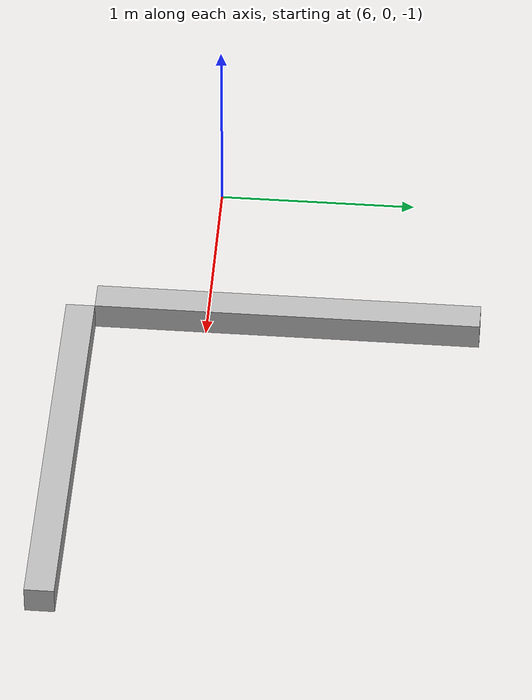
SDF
<sdf version="1.7">
 <world name="default">
  <model name="orthogonal_747_2.000.15_TS">
   <static>1</static>
   <link name="x_link_0_2_6">
    <inertial>
     <mass>1</mass>
     <inertia>
      <ixx>0.166667</ixx>
      <ixy>0</ixy>
      <ixz>0</ixz>
      <iyy>0.166667</iyy>
      <iyz>0</iyz>
      <izz>0.166667</izz>
     </inertia>
    </inertial>
    <pose>13.975 4.3 1.075 0 -0 0</pose>
    <visual name="visual_0">
     <laser_retro>449</laser_retro>
     <geometry><box><size>2 1e-06 0.15</size></box></geometry>
     <material>
      <script><name>Gazebo/Grey</name><uri>file://media/materials/scripts/gazebo.material</uri></script>
      <shader type="pixel"><normal_map>__default__</normal_map></shader>
      <ambient>0.678 0.498 0.659 1</ambient>
      <diffuse>0.7 0.7 0.7 1</diffuse>
      <specular>0.01 0.01 0.01 1</specular>
      <emissive>0 0 0 1</emissive>
     </material>
     <pose>0 -0.075 0 0 -0 0</pose>
     <transparency>1</transparency>
    </visual>
    <visual name="visual_1">
     <laser_retro>450</laser_retro>
     <geometry><box><size>2 1e-06 0.15</size></box></geometry>
     <material>
      <script><name>Gazebo/Grey</name><uri>file://media/materials/scripts/gazebo.material</uri></script>
      <shader type="pixel"><normal_map>__default__</normal_map></shader>
      <ambient>0.447 0.624 0.812 1</ambient>
      <diffuse>0.7 0.7 0.7 1</diffuse>
      <specular>0.01 0.01 0.01 1</specular>
      <emissive>0 0 0 1</emissive>
     </material>
     <pose>0 0.075 0 0 -0 0</pose>
     <transparency>1</transparency>
    </visual>
    <visual name="visual_2">
     <laser_retro>451</laser_retro>
     <geometry><box><size>2 0.15 1e-06</size></box></geometry>
     <material>
      <script><name>Gazebo/Grey</name><uri>file://media/materials/scripts/gazebo.material</uri></script>
      <shader type="pixel"><normal_map>__default__</normal_map></shader>
      <ambient>0.988 0.686 0.243 1</ambient>
      <diffuse>0.7 0.7 0.7 1</diffuse>
      <specular>0.01 0.01 0.01 1</specular>
      <emissive>0 0 0 1</emissive>
     </material>
     <pose>0 0 -0.075 0 -0 0</pose>
     <transparency>1</transparency>
    </visual>
    <visual name="visual_3">
     <laser_retro>452</laser_retro>
     <geometry><box><size>1e-06 0.15 0.15</size></box></geometry>
     <material>
      <script><name>Gazebo/Grey</name><uri>file://media/materials/scripts/gazebo.material</uri></script>
      <shader type="pixel"><normal_map>__default__</normal_map></shader>
      <ambient>0.988 0.914 0.31 1</ambient>
      <diffuse>0.7 0.7 0.7 1</diffuse>
      <specular>0.01 0.01 0.01 1</specular>
      <emissive>0 0 0 1</emissive>
     </material>
     <pose>1 0 0 0 -0 0</pose>
     <transparency>1</transparency>
    </visual>
    <visual name="visual_4">
     <laser_retro>453</laser_retro>
     <geometry><box><size>2 0.15 1e-06</size></box></geometry>
     <material>
      <script><name>Gazebo/Grey</name><uri>file://media/materials/scripts/gazebo.material</uri></script>
      <shader type="pixel"><normal_map>__default__</normal_map></shader>
      <ambient>0.937 0.161 0.161 1</ambient>
      <diffuse>0.7 0.7 0.7 1</diffuse>
      <specular>0.01 0.01 0.01 1</specular>
      <emissive>0 0 0 1</emissive>
     </material>
     <pose>0 0 0.075 0 -0 0</pose>
     <transparency>1</transparency>
    </visual>
    <visual name="visual_5">
     <laser_retro>454</laser_retro>
     <geometry><box><size>1e-06 0.15 0.15</size></box></geometry>
     <material>
      <script><name>Gazebo/Grey</name><uri>file://media/materials/scripts/gazebo.material</uri></script>
      <shader type="pixel"><normal_map>__default__</normal_map></shader>
      <ambient>0.541 0.886 0.204 1</ambient>
      <diffuse>0.7 0.7 0.7 1</diffuse>
      <specular>0.01 0.01 0.01 1</specular>
      <emissive>0 0 0 1</emissive>
     </material>
     <pose>-1 0 0 0 -0 0</pose>
     <transparency>1</transparency>
    </visual>
    <visual name="visual_texture">
     <geometry><box><size>1.9998 0.149985 0.149985</size></box></geometry>
     <material>
      <script>
       <uri>model://BASE_MODELS/simple_block_v2_textured/materials/scripts</uri>
       <uri>model://BASE_MODELS/simple_block_v2_textured/materials/textures</uri>
       <name>metal</name>
      </script>
     </material>
     <laser_retro>455</laser_retro>
    </visual>
    <collision name="collision">
     <geometry><box><size>2 0.15 0.15</size></box></geometry>
     <surface>
      <friction>
       <ode><mu>1</mu><mu2>1</mu2><fdir1>0 0 0</fdir1><slip1>0</slip1><slip2>0</slip2></ode>
       <torsional>
        <coefficient>1</coefficient>
        <patch_radius>0</patch_radius>
        <surface_radius>0</surface_radius>
        <use_patch_radius>1</use_patch_radius>
        <ode><slip>0</slip></ode>
       </torsional>
      </friction>
      <bounce><restitution_coefficient>0</restitution_coefficient><threshold>1e+06</threshold></bounce>
      <contact>
       <collide_without_contact>0</collide_without_contact>
       <collide_without_contact_bitmask>1</collide_without_contact_bitmask>
       <collide_bitmask>1</collide_bitmask>
       <ode>
        <soft_cfm>0</soft_cfm>
        <soft_erp>0.2</soft_erp>
        <kp>1e+13</kp>
        <kd>1</kd>
        <max_vel>0.01</max_vel>
        <min_depth>0</min_depth>
       </ode>
       <bullet>
        <split_impulse>1</split_impulse>
        <split_impulse_penetration_threshold>-0.01</split_impulse_penetration_threshold>
        <soft_cfm>0</soft_cfm>
        <soft_erp>0.2</soft_erp>
        <kp>1e+13</kp>
        <kd>1</kd>
       </bullet>
      </contact>
     </surface>
    </collision>
   </link>
   <link name="y_link_0_2_6">
    <inertial>
     <mass>1</mass>
     <inertia>
      <ixx>0.166667</ixx>
      <ixy>0</ixy>
      <ixz>0</ixz>
      <iyy>0.166667</iyy>
      <iyz>0</iyz>
      <izz>0.166667</izz>
     </inertia>
    </inertial>
    <pose>12.9 5.375 1.075 0 -0 0</pose>
    <visual name="visual_0">
     <laser_retro>456</laser_retro>
     <geometry><box><size>0.15 1e-06 0.15</size></box></geometry>
     <material>
      <script><name>Gazebo/Grey</name><uri>file://media/materials/scripts/gazebo.material</uri></script>
      <shader type="pixel"><normal_map>__default__</normal_map></shader>
      <ambient>0.678 0.498 0.659 1</ambient>
      <diffuse>0.7 0.7 0.7 1</diffuse>
      <specular>0.01 0.01 0.01 1</specular>
      <emissive>0 0 0 1</emissive>
     </material>
     <pose>0 -1 0 0 -0 0</pose>
     <transparency>1</transparency>
    </visual>
    <visual name="visual_1">
     <laser_retro>457</laser_retro>
     <geometry><box><size>0.15 1e-06 0.15</size></box></geometry>
     <material>
      <script><name>Gazebo/Grey</name><uri>file://media/materials/scripts/gazebo.material</uri></script>
      <shader type="pixel"><normal_map>__default__</normal_map></shader>
      <ambient>0.447 0.624 0.812 1</ambient>
      <diffuse>0.7 0.7 0.7 1</diffuse>
      <specular>0.01 0.01 0.01 1</specular>
      <emissive>0 0 0 1</emissive>
     </material>
     <pose>0 1 0 0 -0 0</pose>
     <transparency>1</transparency>
    </visual>
    <visual name="visual_2">
     <laser_retro>458</laser_retro>
     <geometry><box><size>0.15 2 1e-06</size></box></geometry>
     <material>
      <script><name>Gazebo/Grey</name><uri>file://media/materials/scripts/gazebo.material</uri></script>
      <shader type="pixel"><normal_map>__default__</normal_map></shader>
      <ambient>0.988 0.686 0.243 1</ambient>
      <diffuse>0.7 0.7 0.7 1</diffuse>
      <specular>0.01 0.01 0.01 1</specular>
      <emissive>0 0 0 1</emissive>
     </material>
     <pose>0 0 -0.075 0 -0 0</pose>
     <transparency>1</transparency>
    </visual>
    <visual name="visual_3">
     <laser_retro>459</laser_retro>
     <geometry><box><size>1e-06 2 0.15</size></box></geometry>
     <material>
      <script><name>Gazebo/Grey</name><uri>file://media/materials/scripts/gazebo.material</uri></script>
      <shader type="pixel"><normal_map>__default__</normal_map></shader>
      <ambient>0.988 0.914 0.31 1</ambient>
      <diffuse>0.7 0.7 0.7 1</diffuse>
      <specular>0.01 0.01 0.01 1</specular>
      <emissive>0 0 0 1</emissive>
     </material>
     <pose>0.075 0 0 0 -0 0</pose>
     <transparency>1</transparency>
    </visual>
    <visual name="visual_4">
     <laser_retro>460</laser_retro>
     <geometry><box><size>0.15 2 1e-06</size></box></geometry>
     <material>
      <script><name>Gazebo/Grey</name><uri>file://media/materials/scripts/gazebo.material</uri></script>
      <shader type="pixel"><normal_map>__default__</normal_map></shader>
      <ambient>0.937 0.161 0.161 1</ambient>
      <diffuse>0.7 0.7 0.7 1</diffuse>
      <specular>0.01 0.01 0.01 1</specular>
      <emissive>0 0 0 1</emissive>
     </material>
     <pose>0 0 0.075 0 -0 0</pose>
     <transparency>1</transparency>
    </visual>
    <visual name="visual_5">
     <laser_retro>461</laser_retro>
     <geometry><box><size>1e-06 2 0.15</size></box></geometry>
     <material>
      <script><name>Gazebo/Grey</name><uri>file://media/materials/scripts/gazebo.material</uri></script>
      <shader type="pixel"><normal_map>__default__</normal_map></shader>
      <ambient>0.541 0.886 0.204 1</ambient>
      <diffuse>0.7 0.7 0.7 1</diffuse>
      <specular>0.01 0.01 0.01 1</specular>
      <emissive>0 0 0 1</emissive>
     </material>
     <pose>-0.075 0 0 0 -0 0</pose>
     <transparency>1</transparency>
    </visual>
    <visual name="visual_texture">
     <geometry><box><size>0.149985 1.9998 0.149985</size></box></geometry>
     <material>
      <script>
       <uri>model://BASE_MODELS/simple_block_v2_textured/materials/scripts</uri>
       <uri>model://BASE_MODELS/simple_block_v2_textured/materials/textures</uri>
       <name>metal</name>
      </script>
     </material>
     <laser_retro>462</laser_retro>
    </visual>
    <collision name="collision">
     <geometry><box><size>0.15 2 0.15</size></box></geometry>
     <surface>
      <friction>
       <ode><mu>1</mu><mu2>1</mu2><fdir1>0 0 0</fdir1><slip1>0</slip1><slip2>0</slip2></ode>
       <torsional>
        <coefficient>1</coefficient>
        <patch_radius>0</patch_radius>
        <surface_radius>0</surface_radius>
        <use_patch_radius>1</use_patch_radius>
        <ode><slip>0</slip></ode>
       </torsional>
      </friction>
      <bounce><restitution_coefficient>0</restitution_coefficient><threshold>1e+06</threshold></bounce>
      <contact>
       <collide_without_contact>0</collide_without_contact>
       <collide_without_contact_bitmask>1</collide_without_contact_bitmask>
       <collide_bitmask>1</collide_bitmask>
       <ode>
        <soft_cfm>0</soft_cfm>
        <soft_erp>0.2</soft_erp>
        <kp>1e+13</kp>
        <kd>1</kd>
        <max_vel>0.01</max_vel>
        <min_depth>0</min_depth>
       </ode>
       <bullet>
        <split_impulse>1</split_impulse>
        <split_impulse_penetration_threshold>-0.01</split_impulse_penetration_threshold>
        <soft_cfm>0</soft_cfm>
        <soft_erp>0.2</soft_erp>
        <kp>1e+13</kp>
        <kd>1</kd>
       </bullet>
      </contact>
     </surface>
    </collision>
   </link>
   <pose>-6.47624 -5 -2.5 0 -0 0</pose>
  </model>
 </world>
</sdf>
